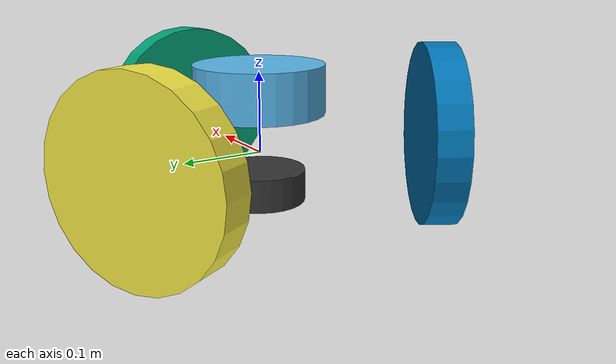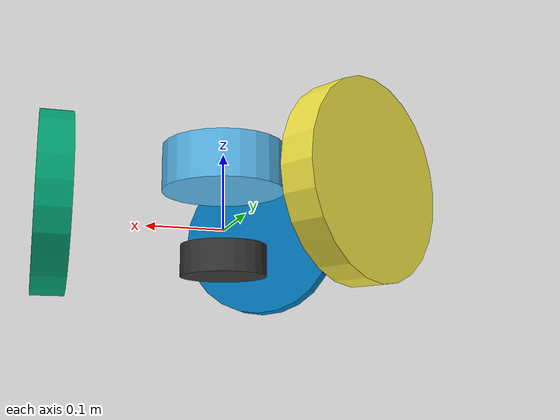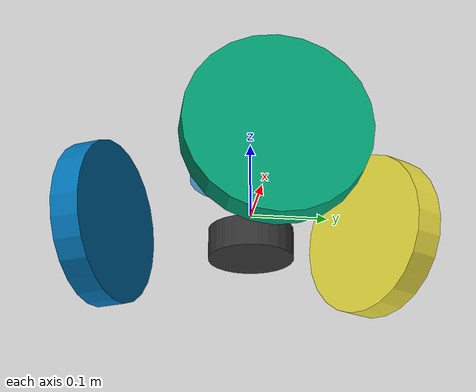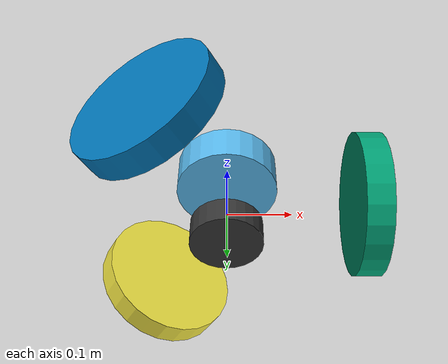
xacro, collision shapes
<?xml version="1.0"?>
<robot xmlns:xacro="http://www.ros.org/wiki/xacro">

    <xacro:include filename="$(find hades_description)/urdf/base/wheel.urdf.xacro" />
    <xacro:include filename="$(find hades_description)/urdf/sensors/laser.urdf.xacro" />

    <link name="base_link">
        <visual>
            <origin xyz="0 0 0" rpy="1.57080 0 1.57080"/>
            <geometry>
                <mesh filename="package://hades_description/meshes/base/base.dae" scale="0.001 0.001 0.001"/>
            </geometry>
        </visual>
        <collision>
            <origin xyz="0 0 0.08" rpy="0 0 0"/>
            <geometry>
                <cylinder radius="0.08" length="0.06"/>
            </geometry>
        </collision>
        <inertial>
            <origin xyz="0 0 0.05" rpy="0 0 0"/>
            <mass value="5.0"/>
            <inertia ixx="0.05" ixy="0.0" ixz="0.0"
                     iyy="0.05" iyz="0.0"
                     izz="0.08"/>
        </inertial>
    </link>

    <xacro:hades_wheel prefix="front"
                       x_offset="0.215"
                       y_offset="0.0"
                       z_offset="0.022886"
                       yaw_offset="0.0"/>

    <xacro:hades_wheel prefix="back_left"
                       x_offset="-0.1075"
                       y_offset="0.186195"
                       z_offset="0.022886"
                       yaw_offset="2.0944"/>

    <xacro:hades_wheel prefix="back_right"
                       x_offset="-0.1075"
                       y_offset="-0.186195"
                       z_offset="0.022886"
                       yaw_offset="-2.0944"/>

</robot>

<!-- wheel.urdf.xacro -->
<robot xmlns:xacro="http://www.ros.org/wiki/xacro">

    <xacro:macro name="hades_wheel" params="prefix x_offset y_offset z_offset yaw_offset">
        <link name="${prefix}_wheel_link">
            <visual>
                <origin xyz="0 0 0" rpy="1.5708 0 0"/>
                <geometry>
                    <mesh filename="package://hades_description/meshes/wheels/wheel.dae" scale="0.001 0.001 0.001"/>
                </geometry>
            </visual>

            <collision>
                <origin xyz="0 0 0" rpy="0 1.5708 0"/>
                <geometry>
                    <cylinder radius="0.1125" length="0.04"/>
                </geometry>
            </collision>

            <inertial>
                <origin xyz="0 0 0" rpy="0 1.5708 0"/>
                <mass value="0.8"/>
                <inertia ixx="0.00259" ixy="0.0" ixz="0.0"
                         iyy="0.00506" iyz="0.0"
                         izz="0.00259"/>
            </inertial>
        </link>

        <joint name="${prefix}_wheel_joint" type="continuous">
            <parent link="base_link"/>
            <child link="${prefix}_wheel_link"/>
            <origin xyz="${x_offset} ${y_offset} ${z_offset}" rpy="0 0 ${yaw_offset}"/>
            <axis xyz="-1 0 0"/>
            <dynamics damping="0.01" friction="0.05"/>
        </joint>

        <gazebo reference="${prefix}_wheel_link">
            <!-- Atrito primario (tracao) -->
            <mu1>1.5</mu1>
            <!-- Atrito secundario (direcao dos roletes livres) -->
            <mu2>0.01</mu2>
            <!-- Direcao de contato primario em relacao ao link local -->
            <fdir1>0 1 0</fdir1>
            <!-- Rigidez e amortecimento do contato com o solo -->
            <kp>10000000.0</kp>
            <kd>1.0</kd>
            <minDepth>0.002</minDepth>
            <maxVel>0.1</maxVel>
        </gazebo>
    </xacro:macro>

</robot>

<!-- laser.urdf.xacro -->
<robot xmlns:xacro="http://www.ros.org/wiki/xacro">

    <link name="laser_link">
        <visual>
            <origin xyz="0 0 0" rpy="0 0 0"/>
            <geometry>
                <cylinder radius="0.055" length="0.04"/>
            </geometry>
            <material name="dark_grey">
                <color rgba="0.2 0.2 0.2 1.0"/>
            </material>
        </visual>
        <collision>
            <origin xyz="0 0 0" rpy="0 0 0"/>
            <geometry>
                <cylinder radius="0.055" length="0.04"/>
            </geometry>
        </collision>
        <inertial>
            <origin xyz="0 0 0" rpy="0 0 0"/>
            <mass value="0.11"/>
            <inertia ixx="0.0001" ixy="0.0" ixz="0.0"
                     iyy="0.0001" iyz="0.0"
                     izz="0.0001"/>
        </inertial>
    </link>

    <joint name="laser_joint" type="fixed">
        <parent link="base_link"/>
        <child link="laser_link"/>
        <origin xyz="0.0 0.0 -0.04" rpy="0 0 0"/>
    </joint>

    <gazebo reference="laser_link">
        <sensor name="rplidar_c1" type="ray">
            <always_on>true</always_on>
            <visualize>true</visualize>
            <update_rate>10.0</update_rate>
            <ray>
                <scan>
                    <horizontal>
                        <samples>360</samples>
                        <resolution>1</resolution>
                        <min_angle>-3.14159265</min_angle>
                        <max_angle>3.14159265</max_angle>
                    </horizontal>
                </scan>
                <range>
                    <min>0.28</min>
                    <max>12.0</max>
                    <resolution>0.01</resolution>
                </range>
                <noise>
                    <type>gaussian</type>
                    <mean>0.0</mean>
                    <stddev>0.01</stddev>
                </noise>
            </ray>
            <plugin name="gazebo_ros_laser_controller" filename="libgazebo_ros_ray_sensor.so">
                <ros>
                    <remapping>~/out:=/scan</remapping>
                </ros>
                <output_type>sensor_msgs/LaserScan</output_type>
                <frame_name>laser_link</frame_name>
            </plugin>
        </sensor>
    </gazebo>

</robot>
